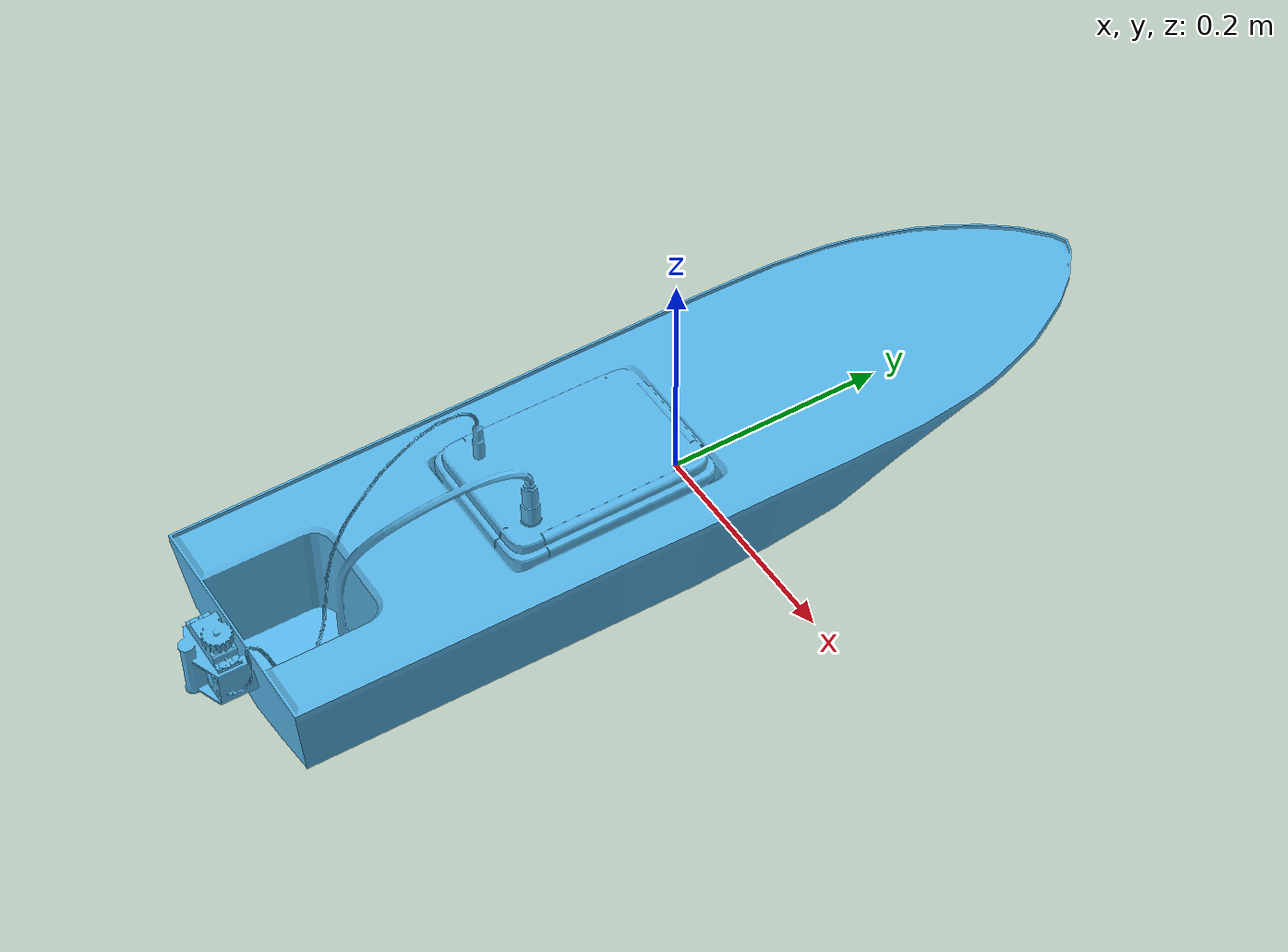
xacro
<?xml version="1.0"?>
<robot xmlns:xacro="http://ros.org/wiki/xacro" name="sandwich">

	<!-- "Dummy" base link to eliminate root link inertia warning -->
	<link name="sandwich/base_link"/>

	<!-- Main link -->
	<link name="sandwich/sandwich_link">
		<inertial>
			<origin xyz="0 0 0" rpy="0 0 0"/>
			<mass value="2"/>
			<inertia
				ixx="5.0" ixy="0.0" ixz="0.0"
				iyy="3.6" iyz="0.0"
				izz="1.7"/>
		</inertial>
		<visual>
			<origin xyz="0 0 0" rpy="0 0 0"/>
			<geometry>
				<mesh filename="file://$(find sandwich_description)/models/sandwich_base/sandwich.dae" scale="1 1 1"/>
			</geometry>
		</visual>
		<collision>
			<origin xyz="0 0 0" rpy="0 0 0"/>
			<geometry>
				<mesh filename="file://$(find sandwich_description)/models/sandwich_base/sandwich.dae" scale="1 1 1"/>
			</geometry>
		</collision>
	</link>

	<joint name="sandwich/sandwich_base_joint" type="fixed">
		<origin xyz="0 0 0" rpy="0 0 0"/>
		<parent link="sandwich/base_link"/>
		<child link="sandwich/sandwich_link"/>
	</joint>
</robot>
